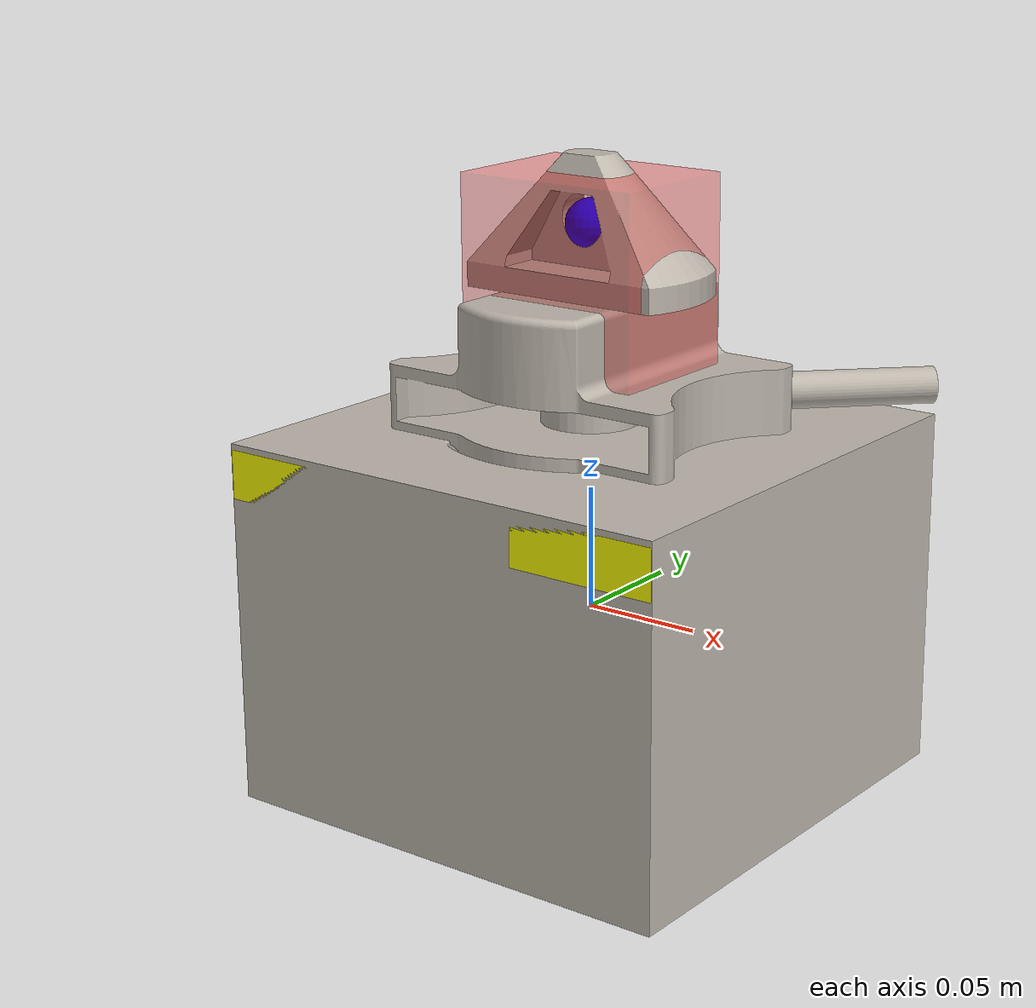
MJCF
<mujoco model="twist_lock">
  <asset>
    <mesh file="../meshes/custom/twist_lock_casing.stl" name="twist_lock_casing_mesh"/>
    <mesh file="../meshes/custom/twist_lock_lock.stl" name="twist_lock_lock_mesh"/>
    <texture file="../../textures/metal.png" type="cube" name="metal" />
    <material name="MatMetal" texture="metal" specular="1" shininess="0.3" />
    <mesh file="../meshes/custom/container.stl" name="container_mesh"/>
    <texture file="../../textures/bread.png" type="cube" name="breadmetal" />
    <material name="BreadMetal" texture="breadmetal" specular="1" shininess="0.3" />
  </asset>
    <worldbody>
      <body>
        <body name="object">
          <!-- container -->
          <body name="container">
            <geom pos="0 0 0" mesh="container_mesh" type="mesh" conaffinity="0" contype="0" material="BreadMetal" group="1" name="container_vis"/>
            <geom pos="0.06875 0 0.0625" type="box" size="0.031 0.1 0.01" conaffinity="0" contype="1" group="0" rgba="1 1 0 1" name="container_col_toplft"/>
            <geom pos="-0.06875 0 0.0625" type="box" size="0.031 0.1 0.01" conaffinity="0" contype="1" group="0" rgba="1 1 0 1" name="container_col_toprgt"/>
            <geom pos="0 0.08125 0.0625" type="box" size="0.0375 0.0185 0.01" conaffinity="0" contype="1" group="0" rgba="1 1 0 1" name="container_col_topfront"/>
            <geom pos="0 -0.08125 0.0625" type="box" size="0.0375 0.0185 0.01" conaffinity="0" contype="1" group="0" rgba="1 1 0 1" name="container_col_topback"/>
          </body>
          <!-- twist_lock -->
          <body name="twistlock" pos="0 0 0.0875">
            <joint name="z_slide" type="slide" pos="0 0 0" axis="0 0 1" range="0 1" damping="0" frictionloss="0.1" limited="true"/>
            <body name="casing">
                <inertial pos="0 0 0" mass="1.0" diaginertia="1 1 0.001" />
                <geom pos="0 0 0" mesh="twist_lock_casing_mesh" type="mesh" conaffinity="0" contype="0" group="1" material="MatMetal" name="casing_vis"/>
                <geom pos="0 0 0" mesh="twist_lock_casing_mesh" type="mesh" solimp="0.998 0.998 0.001" solref="0.02 1" conaffinity="0" contype="1" density="100" friction="0.95 0.3 0.1" group="0" condim="4" name="casing_col"/>
            </body>
            <body name="lock" pos="0 0 0">
                <inertial pos="0 0 0" mass="1.0" diaginertia="1 1 0.001" />
                <joint name="lock_joint" pos="0 0 0" axis="0 0 1" range="0 1.57" damping="0" frictionloss="0.1" limited="true"/>
                <geom pos="0 0 0" mesh="twist_lock_lock_mesh" type="mesh" conaffinity="0" contype="0" group="1" material="MatMetal" name="lock_vis"/>
                <geom pos="0 0 0.05" size="0.04 0.03 0.04" type="box" rgba="1 0 0 0.3" solimp="0.998 0.998 0.001" solref="0.02 1" friction="0.95 0.3 0.1" group="0" condim="4" name="box_col" />
                <geom pos="0 0 0" mesh="twist_lock_lock_mesh" type="mesh" solimp="0.998 0.998 0.001" solref="0.02 1" conaffinity="0" contype="1" density="100" friction="0.95 0.3 0.1" group="0" condim="4" name="lock_col"/>
                <site name="handle" pos="0 0 0.07" size="0.01 0.01 0.01" rgba="0 0 1 1" group="1" type="sphere" />
            </body>
          </body>
        </body>
        <site name="bottom_site" pos="0 0 0" rgba="0 0 0 0" size="0.005"/>
        <site name="top_site" pos="0 0 0" rgba="0 0 0 0" size="0.005"/>
        <site name="horizontal_radius_site" pos="0 0 0" rgba="0 0 0 0" size="0.1"/>
      </body>
    </worldbody>
</mujoco>
